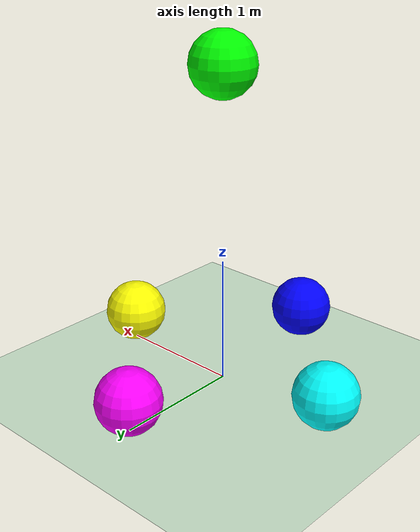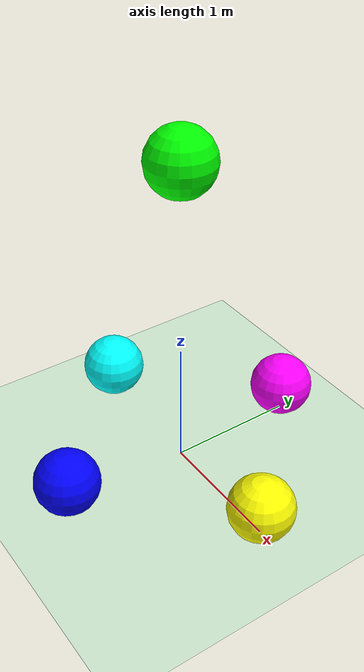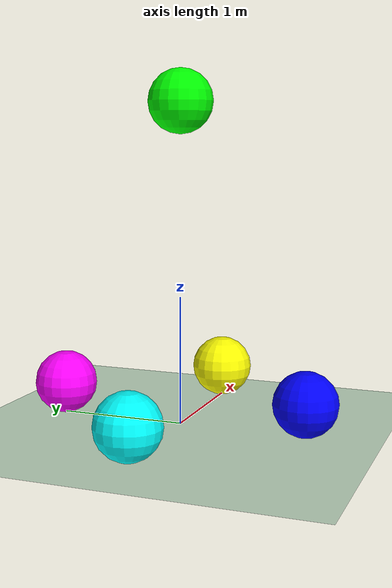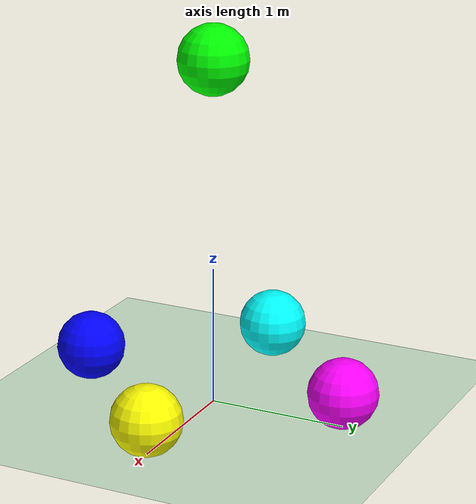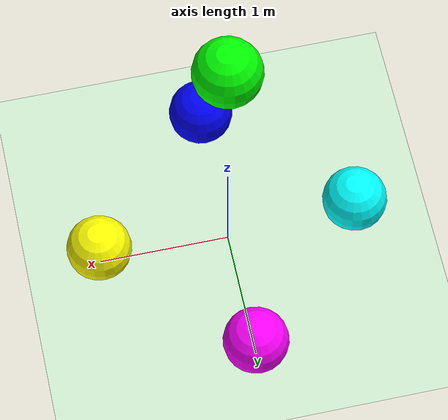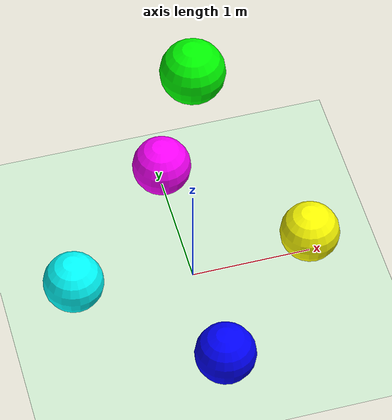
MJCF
<mujoco>
  <include file="./common/materials.xml"/>
  <option timestep="0.01"/>

  <worldbody>

    <light name="light" pos="0 0 3" directional = "true"/>
    <camera name="fixed" pos="0 -3 3" xyaxes="1 0 0 0 1 1"/>
    <geom name="floor" type="plane" size="5 5 0.1" pos="0 0 0" rgba="0.8 0.9 0.8 1" material="motphys-ground"/>

    <body name="sphere_B0" pos="0 0 2.5">
        <freejoint/>
        <geom type="sphere" size="0.25" pos="0 0 0" rgba="0 1 0 1"/>
    </body>

    <body name="sphere_B1" pos="1 0 0.25">
        <freejoint/>
        <geom type="sphere" size="0.25" pos="0 0 0" rgba="1 1 0 1"/>
    </body>

    <body name="sphere_B2" pos="-1 0 0.25">
        <freejoint/>
        <geom type="sphere" size="0.25" pos="0 0 0" rgba="0 1 1 1"/>
    </body>

    <body name="sphere_B3" pos="0 1 0.25">
        <freejoint/>
        <geom type="sphere" size="0.25" pos="0 0 0" rgba="1 0 1 1"/>
    </body>

    <body name="sphere_B4" pos="0 -1 0.25">
        <freejoint/>
        <geom type="sphere" size="0.25" pos="0 0 0" rgba="0 0 1 1"/>
    </body>

  </worldbody>
</mujoco>

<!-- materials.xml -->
<!--
Common textures, colors and materials to be used throughout this suite. Some
materials such as xxx_highlight are activated on occurence of certain events,
for example receiving a positive reward.
-->
<mujoco>
  <asset>
    <texture name="motphys-ground" type="2d" file="motphys-ground.png" />
    <material name="motphys-ground" texture="motphys-ground" texuniform="true"
      texrepeat="0.4 0.4" />
  </asset>
</mujoco>
